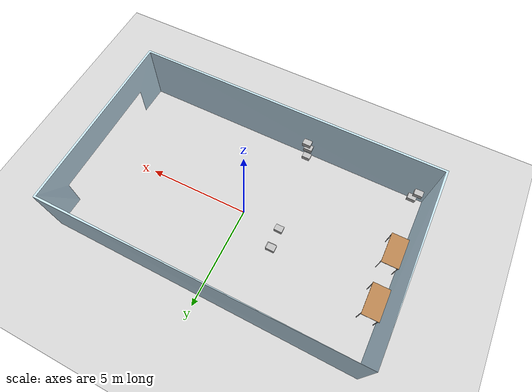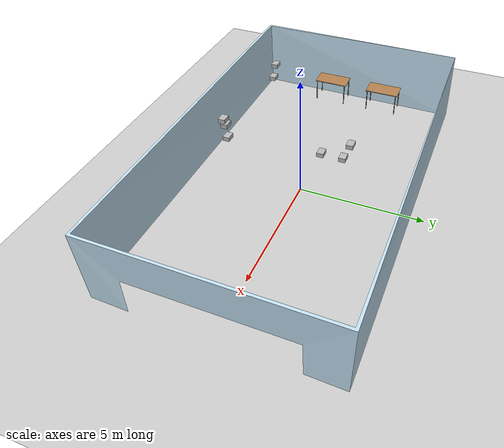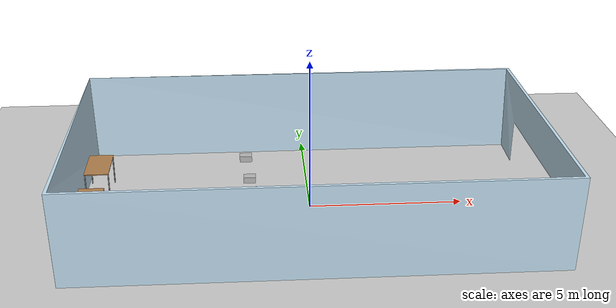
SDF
<sdf version="1.9">
 <world name="empty">
  <physics name="1ms" type="ignored">
   <max_step_size>0.001</max_step_size>
   <real_time_factor>1</real_time_factor>
   <real_time_update_rate>1000</real_time_update_rate>
  </physics>
  <plugin name="gz::sim::systems::Physics" filename="ignition-gazebo-physics-system"/>
  <plugin name="gz::sim::systems::UserCommands" filename="ignition-gazebo-user-commands-system"/>
  <plugin name="gz::sim::systems::SceneBroadcaster" filename="ignition-gazebo-scene-broadcaster-system"/>
  <plugin name="gz::sim::systems::Contact" filename="ignition-gazebo-contact-system"/>
  <gravity>0 0 -9.8</gravity>
  <magnetic_field>6e-06 2.3e-05 -4.2e-05</magnetic_field>
  <atmosphere type="adiabatic"/>
  <scene><ambient>0.4 0.4 0.4 1</ambient><background>0.7 0.7 0.7 1</background><shadows>true</shadows></scene>
  <model name="ground_plane">
   <static>true</static>
   <link name="link">
    <collision name="collision">
     <geometry><plane><normal>0 0 1</normal><size>100 100</size></plane></geometry>
    </collision>
    <visual name="visual">
     <geometry><plane><normal>0 0 1</normal><size>100 100</size></plane></geometry>
     <material>
      <ambient>0.8 0.8 0.8 1</ambient>
      <diffuse>0.8 0.8 0.8 1</diffuse>
      <specular>0.8 0.8 0.8 1</specular>
     </material>
    </visual>
    <inertial>
     <mass>1</mass>
     <inertia><ixx>1</ixx><ixy>0</ixy><ixz>0</ixz><iyy>1</iyy><iyz>0</iyz><izz>1</izz></inertia>
    </inertial>
   </link>
  </model>
  <model name="warehouse">
   <link name="part_20">
    <inertial>
     <pose>-8.00112 -4.5 1.55045 0 -0 0</pose>
     <mass>262248</mass>
     <inertia>
      <ixx>4304250</ixx>
      <ixy>2.3194299999999999e-08</ixy>
      <ixz>-105193</ixz>
      <iyy>8202510</iyy>
      <iyz>5.4094899999999997e-10</iyz>
      <izz>12114700</izz>
     </inertia>
    </inertial>
    <visual name="part_20_visual_mesh_1">
     <pose relative_to="part_20">-7.5 -4.5 0 0 -0 0</pose>
     <geometry>
      <mesh>
       <uri>file:///~/hk/erc_hackathon_main/Automation/models/warehouse/model://warehouse/assets/part_20.stl</uri>
      </mesh>
     </geometry>
     <material>
      <ambient>0.768627 0.886275 0.952941 1</ambient>
      <diffuse>0.768627 0.886275 0.952941 1</diffuse>
      <specular>0.1 0.1 0.1 1</specular>
      <emissive>0 0 0 0</emissive>
     </material>
    </visual>
    <collision name="part_20_collision_mesh_2">
     <pose relative_to="part_20">-7.5 -4.5 0 0 -0 0</pose>
     <geometry>
      <mesh>
       <uri>file:///~/hk/erc_hackathon_main/Automation/models/warehouse/model://warehouse/assets/part_20.stl</uri>
      </mesh>
     </geometry>
    </collision>
   </link>
   <pose>7.4979 4.49997 0.000204 -9.5e-05 -1.2e-05 -8e-06</pose>
   <static>false</static>
  </model>
  <model name="Table">
   <static>true</static>
   <link name="link">
    <collision name="surface">
     <pose>0 0 1.0 0 0 0</pose>
     <geometry><box><size>1.5 0.8 0.03</size></box></geometry>
     <surface><friction><ode><mu>0.59999999999999998</mu><mu2>0.59999999999999998</mu2></ode></friction></surface>
    </collision>
    <visual name="visual1">
     <pose>0 0 1.0 0 0 0</pose>
     <geometry><box><size>1.5 0.8 0.03</size></box></geometry>
     <material>
      <diffuse>1 1 1 1</diffuse>
      <script><uri>file://media/materials/scripts/gazebo.material</uri><name>Gazebo/Wood</name></script>
      <pbr><metal><albedo_map>model://Table/Table_Diffuse.jpg</albedo_map></metal></pbr>
     </material>
    </visual>
    <collision name="front_left_leg">
     <pose>0.68 0.38 0.5 0 0 0</pose>
     <geometry><cylinder><radius>0.02</radius><length>1</length></cylinder></geometry>
    </collision>
    <visual name="front_left_leg">
     <pose>0.68 0.38 0.5 0 0 0</pose>
     <geometry><cylinder><radius>0.02</radius><length>1</length></cylinder></geometry>
     <material>
      <diffuse>0.5 0.5 0.5 1</diffuse>
      <script><uri>file://media/materials/scripts/gazebo.material</uri><name>Gazebo/Grey</name></script>
     </material>
    </visual>
    <collision name="front_right_leg">
     <pose>0.68 -0.38 0.5 0 0 0</pose>
     <geometry><cylinder><radius>0.02</radius><length>1</length></cylinder></geometry>
    </collision>
    <visual name="front_right_leg">
     <pose>0.68 -0.38 0.5 0 0 0</pose>
     <geometry><cylinder><radius>0.02</radius><length>1</length></cylinder></geometry>
     <material>
      <diffuse>0.5 0.5 0.5 1</diffuse>
      <script><uri>file://media/materials/scripts/gazebo.material</uri><name>Gazebo/Grey</name></script>
     </material>
    </visual>
    <collision name="back_right_leg">
     <pose>-0.68 -0.38 0.5 0 0 0</pose>
     <geometry><cylinder><radius>0.02</radius><length>1</length></cylinder></geometry>
    </collision>
    <visual name="back_right_leg">
     <pose>-0.68 -0.38 0.5 0 0 0</pose>
     <geometry><cylinder><radius>0.02</radius><length>1</length></cylinder></geometry>
     <material>
      <diffuse>0.5 0.5 0.5 1</diffuse>
      <script><uri>file://media/materials/scripts/gazebo.material</uri><name>Gazebo/Grey</name></script>
     </material>
    </visual>
    <collision name="back_left_leg">
     <pose>-0.68 0.38 0.5 0 0 0</pose>
     <geometry><cylinder><radius>0.02</radius><length>1</length></cylinder></geometry>
    </collision>
    <visual name="back_left_leg">
     <pose>-0.68 0.38 0.5 0 0 0</pose>
     <geometry><cylinder><radius>0.02</radius><length>1</length></cylinder></geometry>
     <material>
      <diffuse>0.5 0.5 0.5 1</diffuse>
      <script><uri>file://media/materials/scripts/gazebo.material</uri><name>Gazebo/Grey</name></script>
     </material>
    </visual>
    <inertial>
     <mass>1</mass>
     <inertia><ixx>1</ixx><ixy>0</ixy><ixz>0</ixz><iyy>1</iyy><iyz>0</iyz><izz>1</izz></inertia>
    </inertial>
   </link>
   <pose>-6.95 -1 0 0 -0 1.5732</pose>
  </model>
  <model name="Table_0">
   <static>true</static>
   <link name="link">
    <collision name="surface">
     <pose>0 0 1.0 0 0 0</pose>
     <geometry><box><size>1.5 0.8 0.03</size></box></geometry>
     <surface><friction><ode><mu>0.59999999999999998</mu><mu2>0.59999999999999998</mu2></ode></friction></surface>
    </collision>
    <visual name="visual1">
     <pose>0 0 1.0 0 0 0</pose>
     <geometry><box><size>1.5 0.8 0.03</size></box></geometry>
     <material>
      <diffuse>1 1 1 1</diffuse>
      <script><uri>file://media/materials/scripts/gazebo.material</uri><name>Gazebo/Wood</name></script>
      <pbr><metal><albedo_map>model://Table/Table_Diffuse.jpg</albedo_map></metal></pbr>
     </material>
    </visual>
    <collision name="front_left_leg">
     <pose>0.68 0.38 0.5 0 0 0</pose>
     <geometry><cylinder><radius>0.02</radius><length>1</length></cylinder></geometry>
    </collision>
    <visual name="front_left_leg">
     <pose>0.68 0.38 0.5 0 0 0</pose>
     <geometry><cylinder><radius>0.02</radius><length>1</length></cylinder></geometry>
     <material>
      <diffuse>0.5 0.5 0.5 1</diffuse>
      <script><uri>file://media/materials/scripts/gazebo.material</uri><name>Gazebo/Grey</name></script>
     </material>
    </visual>
    <collision name="front_right_leg">
     <pose>0.68 -0.38 0.5 0 0 0</pose>
     <geometry><cylinder><radius>0.02</radius><length>1</length></cylinder></geometry>
    </collision>
    <visual name="front_right_leg">
     <pose>0.68 -0.38 0.5 0 0 0</pose>
     <geometry><cylinder><radius>0.02</radius><length>1</length></cylinder></geometry>
     <material>
      <diffuse>0.5 0.5 0.5 1</diffuse>
      <script><uri>file://media/materials/scripts/gazebo.material</uri><name>Gazebo/Grey</name></script>
     </material>
    </visual>
    <collision name="back_right_leg">
     <pose>-0.68 -0.38 0.5 0 0 0</pose>
     <geometry><cylinder><radius>0.02</radius><length>1</length></cylinder></geometry>
    </collision>
    <visual name="back_right_leg">
     <pose>-0.68 -0.38 0.5 0 0 0</pose>
     <geometry><cylinder><radius>0.02</radius><length>1</length></cylinder></geometry>
     <material>
      <diffuse>0.5 0.5 0.5 1</diffuse>
      <script><uri>file://media/materials/scripts/gazebo.material</uri><name>Gazebo/Grey</name></script>
     </material>
    </visual>
    <collision name="back_left_leg">
     <pose>-0.68 0.38 0.5 0 0 0</pose>
     <geometry><cylinder><radius>0.02</radius><length>1</length></cylinder></geometry>
    </collision>
    <visual name="back_left_leg">
     <pose>-0.68 0.38 0.5 0 0 0</pose>
     <geometry><cylinder><radius>0.02</radius><length>1</length></cylinder></geometry>
     <material>
      <diffuse>0.5 0.5 0.5 1</diffuse>
      <script><uri>file://media/materials/scripts/gazebo.material</uri><name>Gazebo/Grey</name></script>
     </material>
    </visual>
    <inertial>
     <mass>1</mass>
     <inertia><ixx>1</ixx><ixy>0</ixy><ixz>0</ixz><iyy>1</iyy><iyz>0</iyz><izz>1</izz></inertia>
    </inertial>
   </link>
   <pose>-6.95 1.5 0 0 -0 1.5732</pose>
  </model>
  <include>
   <uri>file:///~/hk/erc_hackathon_main/Automation/models/cardboard_box_blue_15</uri>
   <name>cardboard_box_blue_15</name>
   <pose>-1.92267 0.197275 0.511967 0 -0 0</pose>
  </include>
  <include>
   <uri>file:///~/hk/erc_hackathon_main/Automation/models/cardboard_box_blue_12</uri>
   <name>cardboard_box_blue_12</name>
   <pose>-1.37482 -4.02083 1.5113 0 -0 0</pose>
  </include>
  <include>
   <uri>model://~/hk/erc_hackathon_main/Automation/models/cardboard_box_blue_13</uri>
   <name>cardboard_box_blue_13</name>
   <pose>-1.94442 1.15151 0.511869 0 -0 0</pose>
  </include>
  <include>
   <uri>file:///~/hk/erc_hackathon_main/Automation/models/cardboard_box_blue_0</uri>
   <name>cardboard_box_blue_0</name>
   <pose>-6.86968 -4.12318 0.511744 -2.2e-05 -1.4e-05 -4.2e-05</pose>
  </include>
  <include>
   <uri>file:///~/hk/erc_hackathon_main/Automation/models/cardboard_box_blue_11</uri>
   <name>cardboard_box_blue_11</name>
   <pose>-1.49096 -4.00625 1.17568 -9.2e-05 -9e-06 2.1e-05</pose>
  </include>
  <include>
   <uri>file:///~/hk/erc_hackathon_main/Automation/models/cardboard_box_blue_1</uri>
   <name>cardboard_box_blue_1</name>
   <pose>-6.9793 -4.03706 1.17613 -0.000897 0.000431 -0.000113</pose>
  </include>
  <include>
   <uri>file:///~/hk/erc_hackathon_main/Automation/models/cardboard_box_blue_10</uri>
   <name>cardboard_box_blue_10</name>
   <pose>-1.50299 -3.96337 0.511909 6e-06 1e-06 6e-06</pose>
  </include>
  <include>
   <uri>file:///~/hk/erc_hackathon_main/Automation/models/cardboard_box_blue_14</uri>
   <name>cardboard_box_blue_14</name>
   <pose>-2.05289 1.40417 1.17523 0 -0 0</pose>
  </include>
  <light name="sun" type="directional">
   <pose>0 0 10 0 -0 0</pose>
   <intensity>1</intensity>
   <direction>-0.5 0.1 -0.9</direction>
   <diffuse>0.8 0.8 0.8 1</diffuse>
   <specular>0.2 0.2 0.2 1</specular>
   <attenuation>
    <range>1000</range>
    <linear>0.01</linear>
    <constant>0.90000000000000002</constant>
    <quadratic>0.001</quadratic>
   </attenuation>
   <spot><inner_angle>0</inner_angle><outer_angle>0</outer_angle><falloff>0</falloff></spot>
  </light>
 </world>
</sdf>

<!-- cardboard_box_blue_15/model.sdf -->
<sdf version="1.6">
  <model name="cardboard_box_blue_15">
    <pose>0 0 0.1 0 0 0</pose>
    <link name="link">
      <inertial>
        <mass>0.8</mass>
        <inertia>
          <ixx>0.008666667</ixx>
          <ixy>0</ixy>
          <ixz>0</ixz>
          <iyy>0.013333333</iyy>
          <iyz>0</iyz>
          <izz>0.016666667</izz>
        </inertia>
      </inertial>
      <collision name="collision">
        <geometry>
          <box>
            <size>0.4 0.3 0.2</size>
          </box>
        </geometry>
        <surface>
          <friction>
            <ode>
              <mu>1.0</mu>
              <mu2>1.0</mu2>
            </ode>
          </friction>
          <contact>
            <ode>
              <kp>10000000.0</kp>
              <kd>1.0</kd>
              <min_depth>0.001</min_depth>
              <max_vel>0.1</max_vel>
            </ode>
          </contact>
        </surface>
      </collision>
      <visual name="visual">
        <pose>0 0 -0.1 0 0 0</pose>
        <geometry>
          <mesh>
            <uri>model://cardboard_box_blue_15/meshes/cardboard_box_blue_15.dae</uri>
            <scale>1.007455168 0.755591376 0.503727584</scale>
          </mesh>
        </geometry>
      </visual>
    </link>
  </model>
</sdf>

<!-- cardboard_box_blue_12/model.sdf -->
<sdf version="1.6">
  <model name="cardboard_box_blue_12">
    <pose>0 0 0.1 0 0 0</pose>
    <link name="link">
      <inertial>
        <mass>0.8</mass>
        <inertia>
          <ixx>0.008666667</ixx>
          <ixy>0</ixy>
          <ixz>0</ixz>
          <iyy>0.013333333</iyy>
          <iyz>0</iyz>
          <izz>0.016666667</izz>
        </inertia>
      </inertial>
      <collision name="collision">
        <geometry>
          <box>
            <size>0.4 0.3 0.2</size>
          </box>
        </geometry>
        <surface>
          <friction>
            <ode>
              <mu>1.0</mu>
              <mu2>1.0</mu2>
            </ode>
          </friction>
          <contact>
            <ode>
              <kp>10000000.0</kp>
              <kd>1.0</kd>
              <min_depth>0.001</min_depth>
              <max_vel>0.1</max_vel>
            </ode>
          </contact>
        </surface>
      </collision>
      <visual name="visual">
        <pose>0 0 -0.1 0 0 0</pose>
        <geometry>
          <mesh>
            <uri>model://cardboard_box_blue_12/meshes/cardboard_box_blue_12.dae</uri>
            <scale>1.007455168 0.755591376 0.503727584</scale>
          </mesh>
        </geometry>
      </visual>
    </link>
  </model>
</sdf>

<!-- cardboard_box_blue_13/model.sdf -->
<sdf version="1.6">
  <model name="cardboard_box_blue_13">
    <pose>0 0 0.1 0 0 0</pose>
    <link name="link">
      <inertial>
        <mass>0.8</mass>
        <inertia>
          <ixx>0.008666667</ixx>
          <ixy>0</ixy>
          <ixz>0</ixz>
          <iyy>0.013333333</iyy>
          <iyz>0</iyz>
          <izz>0.016666667</izz>
        </inertia>
      </inertial>
      <collision name="collision">
        <geometry>
          <box>
            <size>0.4 0.3 0.2</size>
          </box>
        </geometry>
        <surface>
          <friction>
            <ode>
              <mu>1.0</mu>
              <mu2>1.0</mu2>
            </ode>
          </friction>
          <contact>
            <ode>
              <kp>10000000.0</kp>
              <kd>1.0</kd>
              <min_depth>0.001</min_depth>
              <max_vel>0.1</max_vel>
            </ode>
          </contact>
        </surface>
      </collision>
      <visual name="visual">
        <pose>0 0 -0.1 0 0 0</pose>
        <geometry>
          <mesh>
            <uri>model://cardboard_box_blue_13/meshes/cardboard_box_blue_13.dae</uri>
            <scale>1.007455168 0.755591376 0.503727584</scale>
          </mesh>
        </geometry>
      </visual>
    </link>
  </model>
</sdf>

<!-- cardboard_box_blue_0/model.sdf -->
<sdf version="1.6">
  <model name="cardboard_box_blue_0">
    <pose>0 0 0.1 0 0 0</pose>
    <link name="link">
      <inertial>
        <mass>0.8</mass>
        <inertia>
          <ixx>0.008666667</ixx>
          <ixy>0</ixy>
          <ixz>0</ixz>
          <iyy>0.013333333</iyy>
          <iyz>0</iyz>
          <izz>0.016666667</izz>
        </inertia>
      </inertial>
      <collision name="collision">
        <geometry>
          <box>
            <size>0.4 0.3 0.2</size>
          </box>
        </geometry>
        <surface>
          <friction>
            <ode>
              <mu>1.0</mu>
              <mu2>1.0</mu2>
            </ode>
          </friction>
          <contact>
            <ode>
              <kp>10000000.0</kp>
              <kd>1.0</kd>
              <min_depth>0.001</min_depth>
              <max_vel>0.1</max_vel>
            </ode>
          </contact>
        </surface>
      </collision>
      <visual name="visual">
        <pose>0 0 -0.1 0 0 0</pose>
        <geometry>
          <mesh>
            <uri>model://cardboard_box_blue_0/meshes/cardboard_box_blue_0.dae</uri>
            <scale>1.007455168 0.755591376 0.503727584</scale>
          </mesh>
        </geometry>
      </visual>
    </link>
  </model>
</sdf>

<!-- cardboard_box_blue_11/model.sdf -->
<sdf version="1.6">
  <model name="cardboard_box_blue_11">
    <pose>0 0 0.1 0 0 0</pose>
    <link name="link">
      <inertial>
        <mass>0.8</mass>
        <inertia>
          <ixx>0.008666667</ixx>
          <ixy>0</ixy>
          <ixz>0</ixz>
          <iyy>0.013333333</iyy>
          <iyz>0</iyz>
          <izz>0.016666667</izz>
        </inertia>
      </inertial>
      <collision name="collision">
        <geometry>
          <box>
            <size>0.4 0.3 0.2</size>
          </box>
        </geometry>
        <surface>
          <friction>
            <ode>
              <mu>1.0</mu>
              <mu2>1.0</mu2>
            </ode>
          </friction>
          <contact>
            <ode>
              <kp>10000000.0</kp>
              <kd>1.0</kd>
              <min_depth>0.001</min_depth>
              <max_vel>0.1</max_vel>
            </ode>
          </contact>
        </surface>
      </collision>
      <visual name="visual">
        <pose>0 0 -0.1 0 0 0</pose>
        <geometry>
          <mesh>
            <uri>model://cardboard_box_blue_11/meshes/cardboard_box_blue_11.dae</uri>
            <scale>1.007455168 0.755591376 0.503727584</scale>
          </mesh>
        </geometry>
      </visual>
    </link>
  </model>
</sdf>

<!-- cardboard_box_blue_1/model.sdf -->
<sdf version="1.6">
  <model name="cardboard_box_blue_1">
    <pose>0 0 0.1 0 0 0</pose>
    <link name="link">
      <inertial>
        <mass>0.8</mass>
        <inertia>
          <ixx>0.008666667</ixx>
          <ixy>0</ixy>
          <ixz>0</ixz>
          <iyy>0.013333333</iyy>
          <iyz>0</iyz>
          <izz>0.016666667</izz>
        </inertia>
      </inertial>
      <collision name="collision">
        <geometry>
          <box>
            <size>0.4 0.3 0.2</size>
          </box>
        </geometry>
        <surface>
          <friction>
            <ode>
              <mu>1.0</mu>
              <mu2>1.0</mu2>
            </ode>
          </friction>
          <contact>
            <ode>
              <kp>10000000.0</kp>
              <kd>1.0</kd>
              <min_depth>0.001</min_depth>
              <max_vel>0.1</max_vel>
            </ode>
          </contact>
        </surface>
      </collision>
      <visual name="visual">
        <pose>0 0 -0.1 0 0 0</pose>
        <geometry>
          <mesh>
            <uri>model://cardboard_box_blue_1/meshes/cardboard_box_blue_1.dae</uri>
            <scale>1.007455168 0.755591376 0.503727584</scale>
          </mesh>
        </geometry>
      </visual>
    </link>
  </model>
</sdf>

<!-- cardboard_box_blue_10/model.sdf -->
<sdf version="1.6">
  <model name="cardboard_box_blue_10">
    <pose>0 0 0.1 0 0 0</pose>
    <link name="link">
      <inertial>
        <mass>0.8</mass>
        <inertia>
          <ixx>0.008666667</ixx>
          <ixy>0</ixy>
          <ixz>0</ixz>
          <iyy>0.013333333</iyy>
          <iyz>0</iyz>
          <izz>0.016666667</izz>
        </inertia>
      </inertial>
      <collision name="collision">
        <geometry>
          <box>
            <size>0.4 0.3 0.2</size>
          </box>
        </geometry>
        <surface>
          <friction>
            <ode>
              <mu>1.0</mu>
              <mu2>1.0</mu2>
            </ode>
          </friction>
          <contact>
            <ode>
              <kp>10000000.0</kp>
              <kd>1.0</kd>
              <min_depth>0.001</min_depth>
              <max_vel>0.1</max_vel>
            </ode>
          </contact>
        </surface>
      </collision>
      <visual name="visual">
        <pose>0 0 -0.1 0 0 0</pose>
        <geometry>
          <mesh>
            <uri>model://cardboard_box_blue_10/meshes/cardboard_box_blue_10.dae</uri>
            <scale>1.007455168 0.755591376 0.503727584</scale>
          </mesh>
        </geometry>
      </visual>
    </link>
  </model>
</sdf>

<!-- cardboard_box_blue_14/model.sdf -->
<sdf version="1.6">
  <model name="cardboard_box_blue_14">
    <pose>0 0 0.1 0 0 0</pose>
    <link name="link">
      <inertial>
        <mass>0.8</mass>
        <inertia>
          <ixx>0.008666667</ixx>
          <ixy>0</ixy>
          <ixz>0</ixz>
          <iyy>0.013333333</iyy>
          <iyz>0</iyz>
          <izz>0.016666667</izz>
        </inertia>
      </inertial>
      <collision name="collision">
        <geometry>
          <box>
            <size>0.4 0.3 0.2</size>
          </box>
        </geometry>
        <surface>
          <friction>
            <ode>
              <mu>1.0</mu>
              <mu2>1.0</mu2>
            </ode>
          </friction>
          <contact>
            <ode>
              <kp>10000000.0</kp>
              <kd>1.0</kd>
              <min_depth>0.001</min_depth>
              <max_vel>0.1</max_vel>
            </ode>
          </contact>
        </surface>
      </collision>
      <visual name="visual">
        <pose>0 0 -0.1 0 0 0</pose>
        <geometry>
          <mesh>
            <uri>model://cardboard_box_blue_14/meshes/cardboard_box_blue_14.dae</uri>
            <scale>1.007455168 0.755591376 0.503727584</scale>
          </mesh>
        </geometry>
      </visual>
    </link>
  </model>
</sdf>
